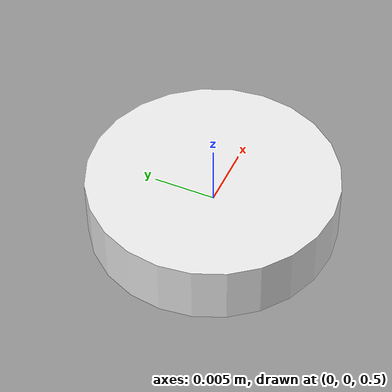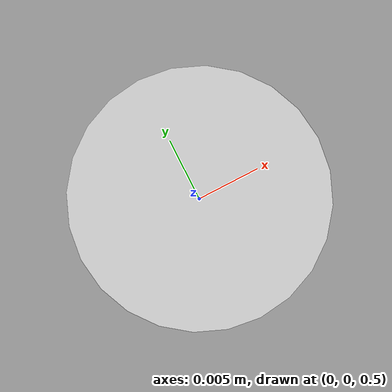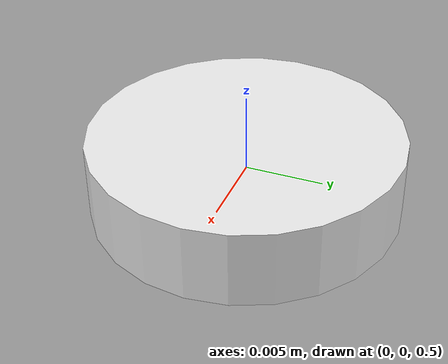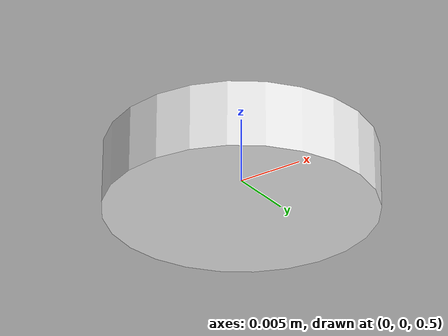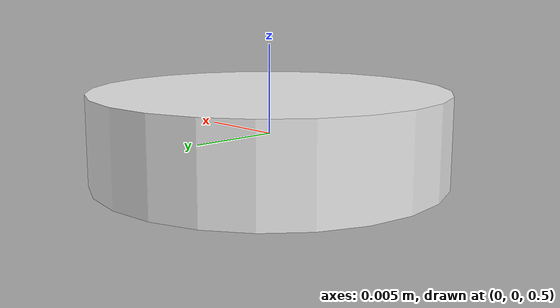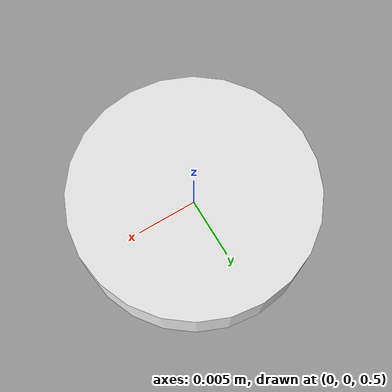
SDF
<?xml version='1.0'?>
<sdf version="1.4">
<model name="badukal_white">
  <pose>0 0 0.5 0 0 0</pose>
  <static>false</static>
    <link name="link">
      <inertial>
        <mass>1.0</mass>
        <inertia> <!-- interias are tricky to compute -->
          <!-- http://answers.gazebosim.org/question/4372/the-inertia-matrix-explained/ -->
          <ixx>0.083</ixx>       <!-- for a box: ixx = 0.083 * mass * (y*y + z*z) -->
          <ixy>0.0</ixy>         <!-- for a box: ixy = 0 -->
          <ixz>0.0</ixz>         <!-- for a box: ixz = 0 -->
          <iyy>0.083</iyy>       <!-- for a box: iyy = 0.083 * mass * (x*x + z*z) -->
          <iyz>0.0</iyz>         <!-- for a box: iyz = 0 -->
          <izz>0.083</izz>       <!-- for a box: izz = 0.083 * mass * (x*x + y*y) -->
        </inertia>
      </inertial>
      <collision name="collision">
        <geometry>
	  <cylinder>
	    <radius>0.01</radius>
	    <length>0.005</length>
	  </cylinder>
        </geometry>
      </collision>
      <visual name="visual">
        <geometry>
	  <cylinder>
	    <radius>0.01</radius>
	    <length>0.005</length>
	  </cylinder>
        </geometry>
        <material>
          <script>
            <uri>file://media/materials/scripts/gazebo.material</uri>
            <name>Gazebo/White</name>
          </script>
        </material>
      </visual>
    </link>
  </model>
</sdf>
